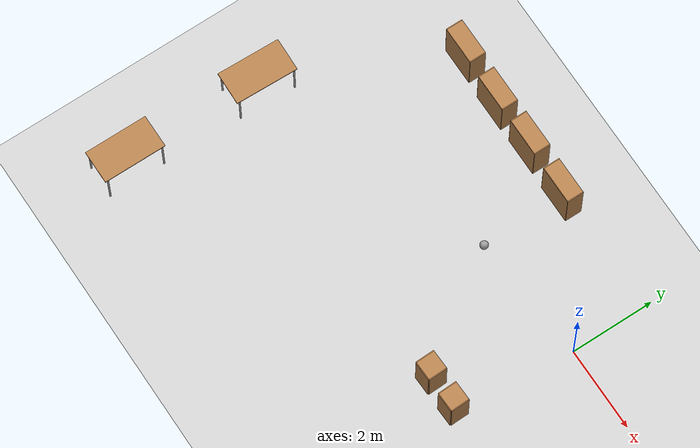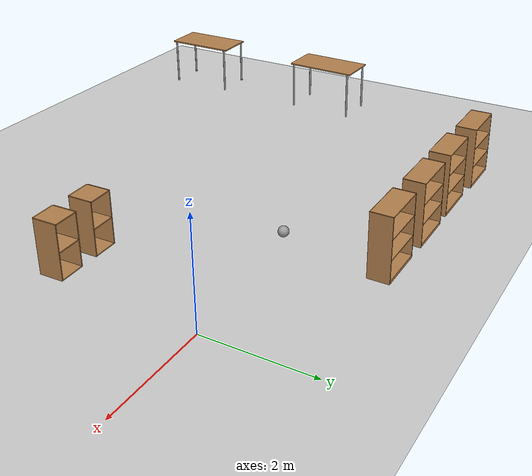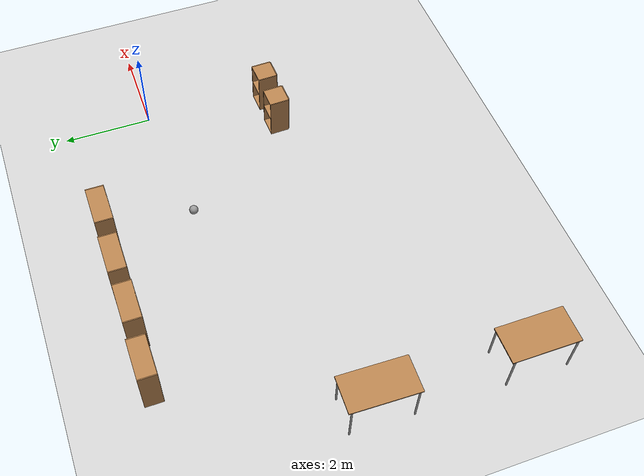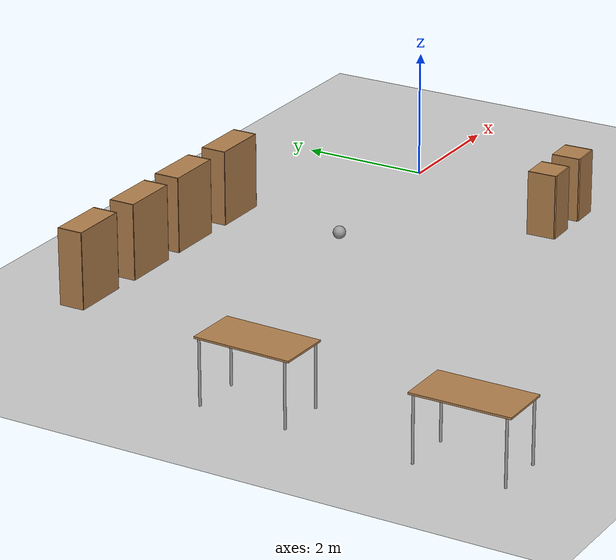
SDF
<sdf version="1.6">
 <world name="default">
  <model name="ground_plane">
   <static>1</static>
   <link name="link">
    <collision name="collision">
     <geometry><plane><normal>0 0 1</normal><size>100 100</size></plane></geometry>
     <surface><friction><ode><mu>100</mu><mu2>50</mu2></ode></friction></surface>
    </collision>
    <visual name="visual">
     <cast_shadows>0</cast_shadows>
     <geometry><plane><normal>0 0 1</normal><size>100 100</size></plane></geometry>
     <material>
      <script><uri>file://media/materials/scripts/gazebo.material</uri><name>Gazebo/Grey</name></script>
     </material>
    </visual>
   </link>
  </model>
  <model name="bookshelf">
   <static>1</static>
   <link name="link">
    <inertial><mass>1</mass></inertial>
    <collision name="back">
     <pose>0 0.005 0.6 0 -0 0</pose>
     <geometry><box><size>0.9 0.01 1.2</size></box></geometry>
    </collision>
    <visual name="visual1">
     <pose>0 0.005 0.6 0 -0 0</pose>
     <geometry><box><size>0.9 0.01 1.2</size></box></geometry>
     <material>
      <script><uri>file://media/materials/scripts/gazebo.material</uri><name>Gazebo/Wood</name></script>
     </material>
    </visual>
    <collision name="left_side">
     <pose>0.45 -0.195 0.6 0 -0 0</pose>
     <geometry><box><size>0.02 0.4 1.2</size></box></geometry>
    </collision>
    <visual name="visual2">
     <pose>0.45 -0.195 0.6 0 -0 0</pose>
     <geometry><box><size>0.02 0.4 1.2</size></box></geometry>
     <material>
      <script><uri>file://media/materials/scripts/gazebo.material</uri><name>Gazebo/Wood</name></script>
     </material>
    </visual>
    <collision name="right_side">
     <pose>-0.45 -0.195 0.6 0 -0 0</pose>
     <geometry><box><size>0.02 0.4 1.2</size></box></geometry>
    </collision>
    <visual name="visual3">
     <pose>-0.45 -0.195 0.6 0 -0 0</pose>
     <geometry><box><size>0.02 0.4 1.2</size></box></geometry>
     <material>
      <script><uri>file://media/materials/scripts/gazebo.material</uri><name>Gazebo/Wood</name></script>
     </material>
    </visual>
    <collision name="bottom">
     <pose>0 -0.195 0.03 0 -0 0</pose>
     <geometry><box><size>0.88 0.4 0.06</size></box></geometry>
    </collision>
    <visual name="visual4">
     <pose>0 -0.195 0.03 0 -0 0</pose>
     <geometry><box><size>0.88 0.4 0.06</size></box></geometry>
     <material>
      <script><uri>file://media/materials/scripts/gazebo.material</uri><name>Gazebo/Wood</name></script>
     </material>
    </visual>
    <collision name="top">
     <pose>0 -0.195 1.19 0 -0 0</pose>
     <geometry><box><size>0.88 0.4 0.02</size></box></geometry>
    </collision>
    <visual name="visual5">
     <pose>0 -0.195 1.19 0 -0 0</pose>
     <geometry><box><size>0.88 0.4 0.02</size></box></geometry>
     <material>
      <script><uri>file://media/materials/scripts/gazebo.material</uri><name>Gazebo/Wood</name></script>
     </material>
    </visual>
    <collision name="low_shelf">
     <pose>0 -0.195 0.43 0 -0 0</pose>
     <geometry><box><size>0.88 0.4 0.02</size></box></geometry>
    </collision>
    <visual name="visual6">
     <pose>0 -0.195 0.43 0 -0 0</pose>
     <geometry><box><size>0.88 0.4 0.02</size></box></geometry>
     <material>
      <script><uri>file://media/materials/scripts/gazebo.material</uri><name>Gazebo/Wood</name></script>
     </material>
    </visual>
    <collision name="high_shelf">
     <pose>0 -0.195 0.8 0 -0 0</pose>
     <geometry><box><size>0.88 0.4 0.02</size></box></geometry>
    </collision>
    <visual name="visual7">
     <pose>0 -0.195 0.8 0 -0 0</pose>
     <geometry><box><size>0.88 0.4 0.02</size></box></geometry>
     <material>
      <script><uri>file://media/materials/scripts/gazebo.material</uri><name>Gazebo/Wood</name></script>
     </material>
    </visual>
   </link>
   <pose>-2.96895 1.51431 0 0 -0 3.14075</pose>
  </model>
  <model name="bookshelf_clone">
   <static>1</static>
   <link name="link">
    <inertial><mass>1</mass></inertial>
    <collision name="back">
     <pose>0 0.005 0.6 0 -0 0</pose>
     <geometry><box><size>0.9 0.01 1.2</size></box></geometry>
    </collision>
    <visual name="visual1">
     <pose>0 0.005 0.6 0 -0 0</pose>
     <geometry><box><size>0.9 0.01 1.2</size></box></geometry>
     <material>
      <script><uri>file://media/materials/scripts/gazebo.material</uri><name>Gazebo/Wood</name></script>
     </material>
    </visual>
    <collision name="left_side">
     <pose>0.45 -0.195 0.6 0 -0 0</pose>
     <geometry><box><size>0.02 0.4 1.2</size></box></geometry>
    </collision>
    <visual name="visual2">
     <pose>0.45 -0.195 0.6 0 -0 0</pose>
     <geometry><box><size>0.02 0.4 1.2</size></box></geometry>
     <material>
      <script><uri>file://media/materials/scripts/gazebo.material</uri><name>Gazebo/Wood</name></script>
     </material>
    </visual>
    <collision name="right_side">
     <pose>-0.45 -0.195 0.6 0 -0 0</pose>
     <geometry><box><size>0.02 0.4 1.2</size></box></geometry>
    </collision>
    <visual name="visual3">
     <pose>-0.45 -0.195 0.6 0 -0 0</pose>
     <geometry><box><size>0.02 0.4 1.2</size></box></geometry>
     <material>
      <script><uri>file://media/materials/scripts/gazebo.material</uri><name>Gazebo/Wood</name></script>
     </material>
    </visual>
    <collision name="bottom">
     <pose>0 -0.195 0.03 0 -0 0</pose>
     <geometry><box><size>0.88 0.4 0.06</size></box></geometry>
    </collision>
    <visual name="visual4">
     <pose>0 -0.195 0.03 0 -0 0</pose>
     <geometry><box><size>0.88 0.4 0.06</size></box></geometry>
     <material>
      <script><uri>file://media/materials/scripts/gazebo.material</uri><name>Gazebo/Wood</name></script>
     </material>
    </visual>
    <collision name="top">
     <pose>0 -0.195 1.19 0 -0 0</pose>
     <geometry><box><size>0.88 0.4 0.02</size></box></geometry>
    </collision>
    <visual name="visual5">
     <pose>0 -0.195 1.19 0 -0 0</pose>
     <geometry><box><size>0.88 0.4 0.02</size></box></geometry>
     <material>
      <script><uri>file://media/materials/scripts/gazebo.material</uri><name>Gazebo/Wood</name></script>
     </material>
    </visual>
    <collision name="low_shelf">
     <pose>0 -0.195 0.43 0 -0 0</pose>
     <geometry><box><size>0.88 0.4 0.02</size></box></geometry>
    </collision>
    <visual name="visual6">
     <pose>0 -0.195 0.43 0 -0 0</pose>
     <geometry><box><size>0.88 0.4 0.02</size></box></geometry>
     <material>
      <script><uri>file://media/materials/scripts/gazebo.material</uri><name>Gazebo/Wood</name></script>
     </material>
    </visual>
    <collision name="high_shelf">
     <pose>0 -0.195 0.8 0 -0 0</pose>
     <geometry><box><size>0.88 0.4 0.02</size></box></geometry>
    </collision>
    <visual name="visual7">
     <pose>0 -0.195 0.8 0 -0 0</pose>
     <geometry><box><size>0.88 0.4 0.02</size></box></geometry>
     <material>
      <script><uri>file://media/materials/scripts/gazebo.material</uri><name>Gazebo/Wood</name></script>
     </material>
    </visual>
   </link>
   <pose>-4.24097 1.53407 0 0 -0 3.14075</pose>
  </model>
  <model name="bookshelf_clone_0">
   <static>1</static>
   <link name="link">
    <inertial><mass>1</mass></inertial>
    <collision name="back">
     <pose>0 0.005 0.6 0 -0 0</pose>
     <geometry><box><size>0.9 0.01 1.2</size></box></geometry>
    </collision>
    <visual name="visual1">
     <pose>0 0.005 0.6 0 -0 0</pose>
     <geometry><box><size>0.9 0.01 1.2</size></box></geometry>
     <material>
      <script><uri>file://media/materials/scripts/gazebo.material</uri><name>Gazebo/Wood</name></script>
     </material>
    </visual>
    <collision name="left_side">
     <pose>0.45 -0.195 0.6 0 -0 0</pose>
     <geometry><box><size>0.02 0.4 1.2</size></box></geometry>
    </collision>
    <visual name="visual2">
     <pose>0.45 -0.195 0.6 0 -0 0</pose>
     <geometry><box><size>0.02 0.4 1.2</size></box></geometry>
     <material>
      <script><uri>file://media/materials/scripts/gazebo.material</uri><name>Gazebo/Wood</name></script>
     </material>
    </visual>
    <collision name="right_side">
     <pose>-0.45 -0.195 0.6 0 -0 0</pose>
     <geometry><box><size>0.02 0.4 1.2</size></box></geometry>
    </collision>
    <visual name="visual3">
     <pose>-0.45 -0.195 0.6 0 -0 0</pose>
     <geometry><box><size>0.02 0.4 1.2</size></box></geometry>
     <material>
      <script><uri>file://media/materials/scripts/gazebo.material</uri><name>Gazebo/Wood</name></script>
     </material>
    </visual>
    <collision name="bottom">
     <pose>0 -0.195 0.03 0 -0 0</pose>
     <geometry><box><size>0.88 0.4 0.06</size></box></geometry>
    </collision>
    <visual name="visual4">
     <pose>0 -0.195 0.03 0 -0 0</pose>
     <geometry><box><size>0.88 0.4 0.06</size></box></geometry>
     <material>
      <script><uri>file://media/materials/scripts/gazebo.material</uri><name>Gazebo/Wood</name></script>
     </material>
    </visual>
    <collision name="top">
     <pose>0 -0.195 1.19 0 -0 0</pose>
     <geometry><box><size>0.88 0.4 0.02</size></box></geometry>
    </collision>
    <visual name="visual5">
     <pose>0 -0.195 1.19 0 -0 0</pose>
     <geometry><box><size>0.88 0.4 0.02</size></box></geometry>
     <material>
      <script><uri>file://media/materials/scripts/gazebo.material</uri><name>Gazebo/Wood</name></script>
     </material>
    </visual>
    <collision name="low_shelf">
     <pose>0 -0.195 0.43 0 -0 0</pose>
     <geometry><box><size>0.88 0.4 0.02</size></box></geometry>
    </collision>
    <visual name="visual6">
     <pose>0 -0.195 0.43 0 -0 0</pose>
     <geometry><box><size>0.88 0.4 0.02</size></box></geometry>
     <material>
      <script><uri>file://media/materials/scripts/gazebo.material</uri><name>Gazebo/Wood</name></script>
     </material>
    </visual>
    <collision name="high_shelf">
     <pose>0 -0.195 0.8 0 -0 0</pose>
     <geometry><box><size>0.88 0.4 0.02</size></box></geometry>
    </collision>
    <visual name="visual7">
     <pose>0 -0.195 0.8 0 -0 0</pose>
     <geometry><box><size>0.88 0.4 0.02</size></box></geometry>
     <material>
      <script><uri>file://media/materials/scripts/gazebo.material</uri><name>Gazebo/Wood</name></script>
     </material>
    </visual>
   </link>
   <pose>-5.4518 1.52637 0 0 -0 3.14075</pose>
  </model>
  <model name="bookshelf_clone_1">
   <static>1</static>
   <link name="link">
    <inertial><mass>1</mass></inertial>
    <collision name="back">
     <pose>0 0.005 0.6 0 -0 0</pose>
     <geometry><box><size>0.9 0.01 1.2</size></box></geometry>
    </collision>
    <visual name="visual1">
     <pose>0 0.005 0.6 0 -0 0</pose>
     <geometry><box><size>0.9 0.01 1.2</size></box></geometry>
     <material>
      <script><uri>file://media/materials/scripts/gazebo.material</uri><name>Gazebo/Wood</name></script>
     </material>
    </visual>
    <collision name="left_side">
     <pose>0.45 -0.195 0.6 0 -0 0</pose>
     <geometry><box><size>0.02 0.4 1.2</size></box></geometry>
    </collision>
    <visual name="visual2">
     <pose>0.45 -0.195 0.6 0 -0 0</pose>
     <geometry><box><size>0.02 0.4 1.2</size></box></geometry>
     <material>
      <script><uri>file://media/materials/scripts/gazebo.material</uri><name>Gazebo/Wood</name></script>
     </material>
    </visual>
    <collision name="right_side">
     <pose>-0.45 -0.195 0.6 0 -0 0</pose>
     <geometry><box><size>0.02 0.4 1.2</size></box></geometry>
    </collision>
    <visual name="visual3">
     <pose>-0.45 -0.195 0.6 0 -0 0</pose>
     <geometry><box><size>0.02 0.4 1.2</size></box></geometry>
     <material>
      <script><uri>file://media/materials/scripts/gazebo.material</uri><name>Gazebo/Wood</name></script>
     </material>
    </visual>
    <collision name="bottom">
     <pose>0 -0.195 0.03 0 -0 0</pose>
     <geometry><box><size>0.88 0.4 0.06</size></box></geometry>
    </collision>
    <visual name="visual4">
     <pose>0 -0.195 0.03 0 -0 0</pose>
     <geometry><box><size>0.88 0.4 0.06</size></box></geometry>
     <material>
      <script><uri>file://media/materials/scripts/gazebo.material</uri><name>Gazebo/Wood</name></script>
     </material>
    </visual>
    <collision name="top">
     <pose>0 -0.195 1.19 0 -0 0</pose>
     <geometry><box><size>0.88 0.4 0.02</size></box></geometry>
    </collision>
    <visual name="visual5">
     <pose>0 -0.195 1.19 0 -0 0</pose>
     <geometry><box><size>0.88 0.4 0.02</size></box></geometry>
     <material>
      <script><uri>file://media/materials/scripts/gazebo.material</uri><name>Gazebo/Wood</name></script>
     </material>
    </visual>
    <collision name="low_shelf">
     <pose>0 -0.195 0.43 0 -0 0</pose>
     <geometry><box><size>0.88 0.4 0.02</size></box></geometry>
    </collision>
    <visual name="visual6">
     <pose>0 -0.195 0.43 0 -0 0</pose>
     <geometry><box><size>0.88 0.4 0.02</size></box></geometry>
     <material>
      <script><uri>file://media/materials/scripts/gazebo.material</uri><name>Gazebo/Wood</name></script>
     </material>
    </visual>
    <collision name="high_shelf">
     <pose>0 -0.195 0.8 0 -0 0</pose>
     <geometry><box><size>0.88 0.4 0.02</size></box></geometry>
    </collision>
    <visual name="visual7">
     <pose>0 -0.195 0.8 0 -0 0</pose>
     <geometry><box><size>0.88 0.4 0.02</size></box></geometry>
     <material>
      <script><uri>file://media/materials/scripts/gazebo.material</uri><name>Gazebo/Wood</name></script>
     </material>
    </visual>
   </link>
   <pose>-6.72622 1.56449 0 0 -0 3.14075</pose>
  </model>
  <model name="cabinet_0_clone_1">
   <static>1</static>
   <link name="cabinet_bottom_plate">
    <inertial>
     <pose>0 0 -1 0 -0 0</pose>
     <inertia><ixx>2.05</ixx><ixy>0</ixy><ixz>0</ixz><iyy>2.05</iyy><iyz>0</iyz><izz>2.05</izz></inertia>
     <mass>25</mass>
    </inertial>
    <collision name="cabinet_bottom_plate_geom">
     <pose>0 0 0.01 0 -0 0</pose>
     <geometry><box><size>0.45 0.45 0.02</size></box></geometry>
    </collision>
    <visual name="cabinet_bottom_plate_geom_visual">
     <pose>0 0 0.01 0 -0 0</pose>
     <geometry><box><size>0.45 0.45 0.02</size></box></geometry>
     <material>
      <script><uri>file://media/materials/scripts/gazebo.material</uri><name>Gazebo/Wood</name></script>
     </material>
    </visual>
    <collision name="cabinet_bottom_plate_geom_cabinet_back_plate">
     <pose>0.235 0 0.51 0 -0 0</pose>
     <geometry><box><size>0.02 0.45 1.02</size></box></geometry>
    </collision>
    <visual name="cabinet_bottom_plate_geom_cabinet_back_plate_visual">
     <pose>0.235 0 0.51 0 -0 0</pose>
     <geometry><box><size>0.02 0.45 1.02</size></box></geometry>
     <material>
      <script><uri>file://media/materials/scripts/gazebo.material</uri><name>Gazebo/Wood</name></script>
     </material>
    </visual>
    <collision name="cabinet_bottom_plate_geom_cabinet_left_plate">
     <pose>0 0.235 0.51 0 -0 0</pose>
     <geometry><box><size>0.45 0.02 1.02</size></box></geometry>
    </collision>
    <visual name="cabinet_bottom_plate_geom_cabinet_left_plate_visual">
     <pose>0 0.235 0.51 0 -0 0</pose>
     <geometry><box><size>0.45 0.02 1.02</size></box></geometry>
     <material>
      <script><uri>file://media/materials/scripts/gazebo.material</uri><name>Gazebo/Wood</name></script>
     </material>
    </visual>
    <collision name="cabinet_bottom_plate_geom_cabinet_middle_plate">
     <pose>0 0 0.51 0 -0 0</pose>
     <geometry><box><size>0.45 0.45 0.02</size></box></geometry>
    </collision>
    <visual name="cabinet_bottom_plate_geom_cabinet_middle_plate_visual">
     <pose>0 0 0.51 0 -0 0</pose>
     <geometry><box><size>0.45 0.45 0.02</size></box></geometry>
     <material>
      <script><uri>file://media/materials/scripts/gazebo.material</uri><name>Gazebo/Wood</name></script>
     </material>
    </visual>
    <collision name="cabinet_bottom_plate_geom_cabinet_right_plate">
     <pose>0 -0.235 0.51 0 -0 0</pose>
     <geometry><box><size>0.45 0.02 1.02</size></box></geometry>
    </collision>
    <visual name="cabinet_bottom_plate_geom_cabinet_right_plate_visual">
     <pose>0 -0.235 0.51 0 -0 0</pose>
     <geometry><box><size>0.45 0.02 1.02</size></box></geometry>
     <material>
      <script><uri>file://media/materials/scripts/gazebo.material</uri><name>Gazebo/Wood</name></script>
     </material>
    </visual>
    <collision name="cabinet_bottom_plate_geom_cabinet_top_plate">
     <pose>0 0 1.01 0 -0 0</pose>
     <geometry><box><size>0.45 0.45 0.02</size></box></geometry>
    </collision>
    <visual name="cabinet_bottom_plate_geom_cabinet_top_plate_visual">
     <pose>0 0 1.01 0 -0 0</pose>
     <geometry><box><size>0.45 0.45 0.02</size></box></geometry>
     <material>
      <script><uri>file://media/materials/scripts/gazebo.material</uri><name>Gazebo/Wood</name></script>
     </material>
    </visual>
   </link>
   <pose>-0.330746 -2.84232 0 0 0 -1.54193</pose>
  </model>
  <model name="cabinet_0_clone_2">
   <static>1</static>
   <link name="cabinet_bottom_plate">
    <inertial>
     <pose>0 0 -1 0 -0 0</pose>
     <inertia><ixx>2.05</ixx><ixy>0</ixy><ixz>0</ixz><iyy>2.05</iyy><iyz>0</iyz><izz>2.05</izz></inertia>
     <mass>25</mass>
    </inertial>
    <collision name="cabinet_bottom_plate_geom">
     <pose>0 0 0.01 0 -0 0</pose>
     <geometry><box><size>0.45 0.45 0.02</size></box></geometry>
    </collision>
    <visual name="cabinet_bottom_plate_geom_visual">
     <pose>0 0 0.01 0 -0 0</pose>
     <geometry><box><size>0.45 0.45 0.02</size></box></geometry>
     <material>
      <script><uri>file://media/materials/scripts/gazebo.material</uri><name>Gazebo/Wood</name></script>
     </material>
    </visual>
    <collision name="cabinet_bottom_plate_geom_cabinet_back_plate">
     <pose>0.235 0 0.51 0 -0 0</pose>
     <geometry><box><size>0.02 0.45 1.02</size></box></geometry>
    </collision>
    <visual name="cabinet_bottom_plate_geom_cabinet_back_plate_visual">
     <pose>0.235 0 0.51 0 -0 0</pose>
     <geometry><box><size>0.02 0.45 1.02</size></box></geometry>
     <material>
      <script><uri>file://media/materials/scripts/gazebo.material</uri><name>Gazebo/Wood</name></script>
     </material>
    </visual>
    <collision name="cabinet_bottom_plate_geom_cabinet_left_plate">
     <pose>0 0.235 0.51 0 -0 0</pose>
     <geometry><box><size>0.45 0.02 1.02</size></box></geometry>
    </collision>
    <visual name="cabinet_bottom_plate_geom_cabinet_left_plate_visual">
     <pose>0 0.235 0.51 0 -0 0</pose>
     <geometry><box><size>0.45 0.02 1.02</size></box></geometry>
     <material>
      <script><uri>file://media/materials/scripts/gazebo.material</uri><name>Gazebo/Wood</name></script>
     </material>
    </visual>
    <collision name="cabinet_bottom_plate_geom_cabinet_middle_plate">
     <pose>0 0 0.51 0 -0 0</pose>
     <geometry><box><size>0.45 0.45 0.02</size></box></geometry>
    </collision>
    <visual name="cabinet_bottom_plate_geom_cabinet_middle_plate_visual">
     <pose>0 0 0.51 0 -0 0</pose>
     <geometry><box><size>0.45 0.45 0.02</size></box></geometry>
     <material>
      <script><uri>file://media/materials/scripts/gazebo.material</uri><name>Gazebo/Wood</name></script>
     </material>
    </visual>
    <collision name="cabinet_bottom_plate_geom_cabinet_right_plate">
     <pose>0 -0.235 0.51 0 -0 0</pose>
     <geometry><box><size>0.45 0.02 1.02</size></box></geometry>
    </collision>
    <visual name="cabinet_bottom_plate_geom_cabinet_right_plate_visual">
     <pose>0 -0.235 0.51 0 -0 0</pose>
     <geometry><box><size>0.45 0.02 1.02</size></box></geometry>
     <material>
      <script><uri>file://media/materials/scripts/gazebo.material</uri><name>Gazebo/Wood</name></script>
     </material>
    </visual>
    <collision name="cabinet_bottom_plate_geom_cabinet_top_plate">
     <pose>0 0 1.01 0 -0 0</pose>
     <geometry><box><size>0.45 0.45 0.02</size></box></geometry>
    </collision>
    <visual name="cabinet_bottom_plate_geom_cabinet_top_plate_visual">
     <pose>0 0 1.01 0 -0 0</pose>
     <geometry><box><size>0.45 0.45 0.02</size></box></geometry>
     <material>
      <script><uri>file://media/materials/scripts/gazebo.material</uri><name>Gazebo/Wood</name></script>
     </material>
    </visual>
   </link>
   <pose>-1.15223 -2.852 0 0 0 -1.54193</pose>
  </model>
  <model name="table">
   <static>1</static>
   <link name="link">
    <collision name="surface">
     <pose>0 0 1 0 -0 0</pose>
     <geometry><box><size>1.5 0.8 0.03</size></box></geometry>
     <surface><friction><ode><mu>0.6</mu><mu2>0.6</mu2></ode></friction></surface>
    </collision>
    <visual name="visual1">
     <pose>0 0 1 0 -0 0</pose>
     <geometry><box><size>1.5 0.8 0.03</size></box></geometry>
     <material>
      <script><uri>file://media/materials/scripts/gazebo.material</uri><name>Gazebo/Wood</name></script>
     </material>
    </visual>
    <collision name="front_left_leg">
     <pose>0.68 0.38 0.5 0 -0 0</pose>
     <geometry><cylinder><radius>0.02</radius><length>1</length></cylinder></geometry>
    </collision>
    <visual name="front_left_leg">
     <pose>0.68 0.38 0.5 0 -0 0</pose>
     <geometry><cylinder><radius>0.02</radius><length>1</length></cylinder></geometry>
     <material>
      <script><uri>file://media/materials/scripts/gazebo.material</uri><name>Gazebo/Grey</name></script>
     </material>
    </visual>
    <collision name="front_right_leg">
     <pose>0.68 -0.38 0.5 0 -0 0</pose>
     <geometry><cylinder><radius>0.02</radius><length>1</length></cylinder></geometry>
    </collision>
    <visual name="front_right_leg">
     <pose>0.68 -0.38 0.5 0 -0 0</pose>
     <geometry><cylinder><radius>0.02</radius><length>1</length></cylinder></geometry>
     <material>
      <script><uri>file://media/materials/scripts/gazebo.material</uri><name>Gazebo/Grey</name></script>
     </material>
    </visual>
    <collision name="back_right_leg">
     <pose>-0.68 -0.38 0.5 0 -0 0</pose>
     <geometry><cylinder><radius>0.02</radius><length>1</length></cylinder></geometry>
    </collision>
    <visual name="back_right_leg">
     <pose>-0.68 -0.38 0.5 0 -0 0</pose>
     <geometry><cylinder><radius>0.02</radius><length>1</length></cylinder></geometry>
     <material>
      <script><uri>file://media/materials/scripts/gazebo.material</uri><name>Gazebo/Grey</name></script>
     </material>
    </visual>
    <collision name="back_left_leg">
     <pose>-0.68 0.38 0.5 0 -0 0</pose>
     <geometry><cylinder><radius>0.02</radius><length>1</length></cylinder></geometry>
    </collision>
    <visual name="back_left_leg">
     <pose>-0.68 0.38 0.5 0 -0 0</pose>
     <geometry><cylinder><radius>0.02</radius><length>1</length></cylinder></geometry>
     <material>
      <script><uri>file://media/materials/scripts/gazebo.material</uri><name>Gazebo/Grey</name></script>
     </material>
    </visual>
   </link>
   <pose>-8.66439 -2.29403 0 0 0 -1.60022</pose>
  </model>
  <model name="table_clone">
   <static>1</static>
   <link name="link">
    <collision name="surface">
     <pose>0 0 1 0 -0 0</pose>
     <geometry><box><size>1.5 0.8 0.03</size></box></geometry>
     <surface><friction><ode><mu>0.6</mu><mu2>0.6</mu2></ode></friction></surface>
    </collision>
    <visual name="visual1">
     <pose>0 0 1 0 -0 0</pose>
     <geometry><box><size>1.5 0.8 0.03</size></box></geometry>
     <material>
      <script><uri>file://media/materials/scripts/gazebo.material</uri><name>Gazebo/Wood</name></script>
     </material>
    </visual>
    <collision name="front_left_leg">
     <pose>0.68 0.38 0.5 0 -0 0</pose>
     <geometry><cylinder><radius>0.02</radius><length>1</length></cylinder></geometry>
    </collision>
    <visual name="front_left_leg">
     <pose>0.68 0.38 0.5 0 -0 0</pose>
     <geometry><cylinder><radius>0.02</radius><length>1</length></cylinder></geometry>
     <material>
      <script><uri>file://media/materials/scripts/gazebo.material</uri><name>Gazebo/Grey</name></script>
     </material>
    </visual>
    <collision name="front_right_leg">
     <pose>0.68 -0.38 0.5 0 -0 0</pose>
     <geometry><cylinder><radius>0.02</radius><length>1</length></cylinder></geometry>
    </collision>
    <visual name="front_right_leg">
     <pose>0.68 -0.38 0.5 0 -0 0</pose>
     <geometry><cylinder><radius>0.02</radius><length>1</length></cylinder></geometry>
     <material>
      <script><uri>file://media/materials/scripts/gazebo.material</uri><name>Gazebo/Grey</name></script>
     </material>
    </visual>
    <collision name="back_right_leg">
     <pose>-0.68 -0.38 0.5 0 -0 0</pose>
     <geometry><cylinder><radius>0.02</radius><length>1</length></cylinder></geometry>
    </collision>
    <visual name="back_right_leg">
     <pose>-0.68 -0.38 0.5 0 -0 0</pose>
     <geometry><cylinder><radius>0.02</radius><length>1</length></cylinder></geometry>
     <material>
      <script><uri>file://media/materials/scripts/gazebo.material</uri><name>Gazebo/Grey</name></script>
     </material>
    </visual>
    <collision name="back_left_leg">
     <pose>-0.68 0.38 0.5 0 -0 0</pose>
     <geometry><cylinder><radius>0.02</radius><length>1</length></cylinder></geometry>
    </collision>
    <visual name="back_left_leg">
     <pose>-0.68 0.38 0.5 0 -0 0</pose>
     <geometry><cylinder><radius>0.02</radius><length>1</length></cylinder></geometry>
     <material>
      <script><uri>file://media/materials/scripts/gazebo.material</uri><name>Gazebo/Grey</name></script>
     </material>
    </visual>
   </link>
   <pose>-8.72849 -5.5952 0 0 0 -1.5739</pose>
  </model>
  <model name="my_ball">
   <link name="link_0">
    <inertial>
     <mass>1</mass>
     <inertia><ixx>0.1</ixx><ixy>0</ixy><ixz>0</ixz><iyy>0.1</iyy><iyz>0</iyz><izz>0.1</izz></inertia>
    </inertial>
    <visual name="visual">
     <geometry><sphere><radius>0.1</radius></sphere></geometry>
     <material>
      <lighting>1</lighting>
      <script><uri>file://media/materials/scripts/gazebo.material</uri><name>Gazebo/Grey</name></script>
      <ambient>0.3 0.3 0.3 1</ambient>
      <diffuse>0.7 0.7 0.7 1</diffuse>
      <specular>0.01 0.01 0.01 1</specular>
      <emissive>1 1 1 1</emissive>
      <shader type="vertex"><normal_map>__default__</normal_map></shader>
     </material>
    </visual>
    <collision name="collision">
     <geometry><sphere><radius>0.1</radius></sphere></geometry>
     <surface>
      <friction>
       <ode><mu>1</mu><mu2>1</mu2><fdir1>0 0 0</fdir1><slip1>0</slip1><slip2>0</slip2></ode>
       <torsional>
        <coefficient>1</coefficient>
        <patch_radius>0</patch_radius>
        <surface_radius>0</surface_radius>
        <use_patch_radius>1</use_patch_radius>
        <ode><slip>0</slip></ode>
       </torsional>
      </friction>
      <bounce><restitution_coefficient>0</restitution_coefficient><threshold>1e+06</threshold></bounce>
      <contact>
       <collide_without_contact>0</collide_without_contact>
       <collide_without_contact_bitmask>1</collide_without_contact_bitmask>
       <collide_bitmask>1</collide_bitmask>
       <ode>
        <soft_cfm>0</soft_cfm>
        <soft_erp>0.2</soft_erp>
        <kp>1e+13</kp>
        <kd>1</kd>
        <max_vel>0.01</max_vel>
        <min_depth>0</min_depth>
       </ode>
       <bullet>
        <split_impulse>1</split_impulse>
        <split_impulse_penetration_threshold>-0.01</split_impulse_penetration_threshold>
        <soft_cfm>0</soft_cfm>
        <soft_erp>0.2</soft_erp>
        <kp>1e+13</kp>
        <kd>1</kd>
       </bullet>
      </contact>
     </surface>
    </collision>
   </link>
   <static>0</static>
   <pose>-2.99177 -0.262293 0.1 0 -0 0</pose>
  </model>
 </world>
</sdf>
